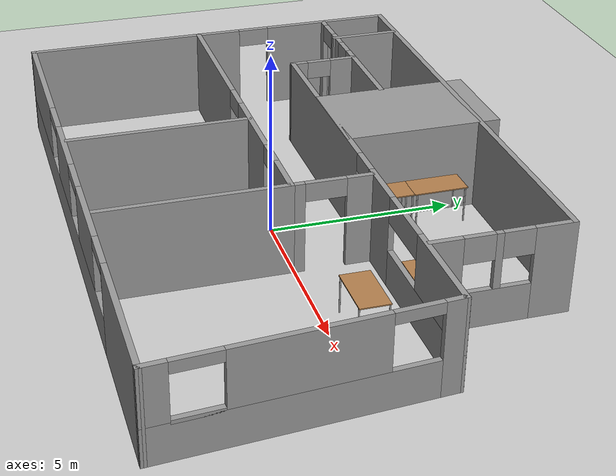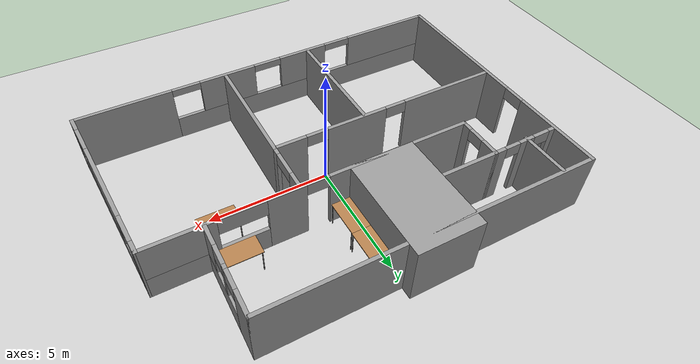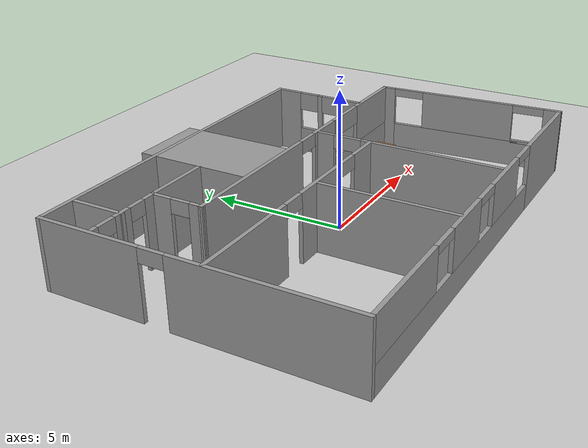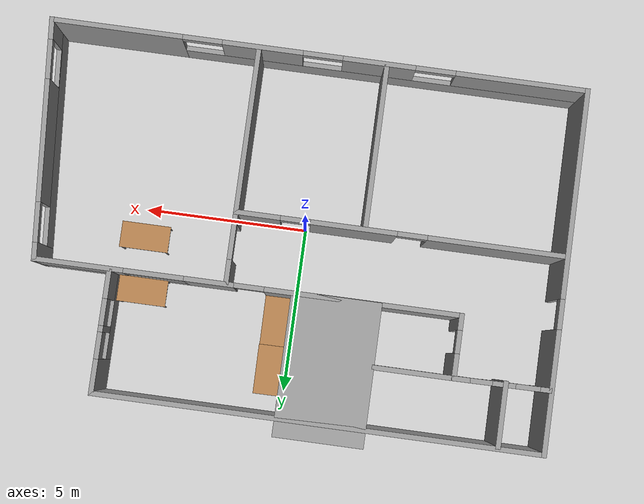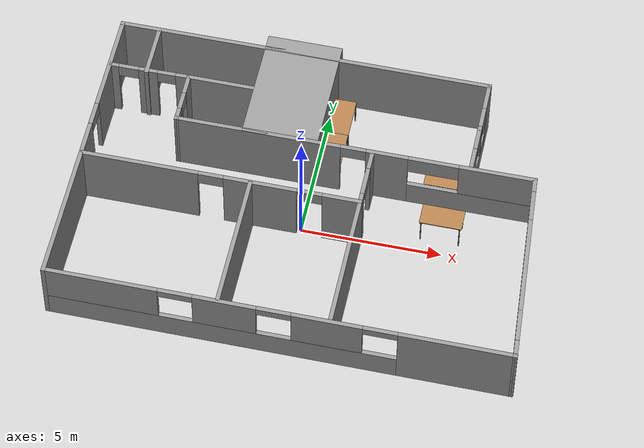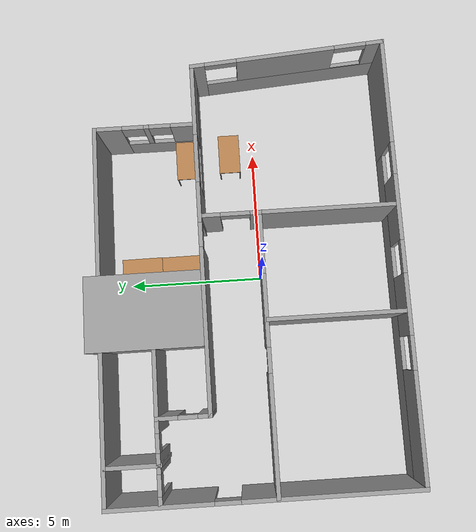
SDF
<sdf version="1.6">
 <world name="default">
  <model name="ground_plane">
   <static>1</static>
   <link name="link">
    <collision name="collision">
     <geometry><plane><normal>0 0 1</normal><size>100 100</size></plane></geometry>
     <surface>
      <contact><collide_bitmask>65535</collide_bitmask></contact>
      <friction><ode><mu>100</mu><mu2>50</mu2></ode></friction>
     </surface>
    </collision>
    <visual name="visual">
     <cast_shadows>0</cast_shadows>
     <geometry><plane><normal>0 0 1</normal><size>100 100</size></plane></geometry>
     <material>
      <script><uri>file://media/materials/scripts/gazebo.material</uri><name>Gazebo/Grey</name></script>
     </material>
    </visual>
   </link>
  </model>
  <model name="Building">
   <pose>0.27526 0.57552 0 0 -0 0</pose>
   <link name="Wall_100">
    <collision name="Wall_100_Collision">
     <geometry><box><size>4.3 2.7 2.5</size></box></geometry>
     <pose>0 0 1.25 0 -0 0</pose>
    </collision>
    <visual name="Wall_100_Visual">
     <pose>0 0 1.25 0 -0 0</pose>
     <geometry><box><size>4.3 2.7 2.5</size></box></geometry>
     <material>
      <script><uri>file://media/materials/scripts/gazebo.material</uri><name>Gazebo/Grey</name></script>
      <ambient>1 1 1 1</ambient>
     </material>
     <meta><layer>0</layer></meta>
    </visual>
    <pose>-1.48764 3.58577 0 0 0 -1.5708</pose>
   </link>
   <link name="Wall_40">
    <pose>-8.07936 -0.23025 0 0 0 -1.5708</pose>
    <visual name="Wall_40_Visual_0">
     <pose>-3.61824 0 1.25 0 -0 0</pose>
     <geometry><box><size>3.76351 0.15 2.5</size></box></geometry>
     <material>
      <script><uri>file://media/materials/scripts/gazebo.material</uri><name>Gazebo/Grey</name></script>
      <ambient>1 1 1 1</ambient>
     </material>
     <meta><layer>0</layer></meta>
    </visual>
    <collision name="Wall_40_Collision_0">
     <geometry><box><size>3.76351 0.15 2.5</size></box></geometry>
     <pose>-3.61824 0 1.25 0 -0 0</pose>
    </collision>
    <visual name="Wall_40_Visual_1">
     <pose>2.33175 0 1.25 0 -0 0</pose>
     <geometry><box><size>6.33649 0.15 2.5</size></box></geometry>
     <material>
      <script><uri>file://media/materials/scripts/gazebo.material</uri><name>Gazebo/Grey</name></script>
      <ambient>1 1 1 1</ambient>
     </material>
     <meta><layer>0</layer></meta>
    </visual>
    <collision name="Wall_40_Collision_1">
     <geometry><box><size>6.33649 0.15 2.5</size></box></geometry>
     <pose>2.33175 0 1.25 0 -0 0</pose>
    </collision>
    <visual name="Wall_40_Visual_2">
     <pose>-1.28649 0 2.25 0 -0 0</pose>
     <geometry><box><size>0.9 0.15 0.5</size></box></geometry>
     <material>
      <script><uri>file://media/materials/scripts/gazebo.material</uri><name>Gazebo/Grey</name></script>
      <ambient>1 1 1 1</ambient>
     </material>
     <meta><layer>0</layer></meta>
    </visual>
    <collision name="Wall_40_Collision_2">
     <geometry><box><size>0.9 0.15 0.5</size></box></geometry>
     <pose>-1.28649 0 2.25 0 -0 0</pose>
    </collision>
   </link>
   <link name="Wall_47">
    <collision name="Wall_47_Collision">
     <geometry><box><size>13.5 0.15 2.5</size></box></geometry>
     <pose>0 0 1.25 0 -0 0</pose>
    </collision>
    <visual name="Wall_47_Visual">
     <pose>0 0 1.25 0 -0 0</pose>
     <geometry><box><size>13.5 0.15 2.5</size></box></geometry>
     <material>
      <script><uri>file://media/materials/scripts/gazebo.material</uri><name>Gazebo/Grey</name></script>
      <ambient>1 1 1 1</ambient>
     </material>
     <meta><layer>0</layer></meta>
    </visual>
    <pose>-1.40436 5.19475 0 0 -0 0</pose>
   </link>
   <link name="Wall_49">
    <pose>5.27064 3.39475 0 0 0 -1.5708</pose>
    <visual name="Wall_49_Visual_0">
     <pose>-1.33629 0 1.25 0 -0 0</pose>
     <geometry><box><size>1.07742 0.15 2.5</size></box></geometry>
     <material>
      <script><uri>file://media/materials/scripts/gazebo.material</uri><name>Gazebo/Grey</name></script>
      <ambient>1 1 1 1</ambient>
     </material>
     <meta><layer>0</layer></meta>
    </visual>
    <collision name="Wall_49_Collision_0">
     <geometry><box><size>1.07742 0.15 2.5</size></box></geometry>
     <pose>-1.33629 0 1.25 0 -0 0</pose>
    </collision>
    <visual name="Wall_49_Visual_1">
     <pose>0.538709 0 0.5 0 -0 0</pose>
     <geometry><box><size>2.67258 0.15 1</size></box></geometry>
     <material>
      <script><uri>file://media/materials/scripts/gazebo.material</uri><name>Gazebo/Grey</name></script>
      <ambient>1 1 1 1</ambient>
     </material>
     <meta><layer>0</layer></meta>
    </visual>
    <collision name="Wall_49_Collision_1">
     <geometry><box><size>2.67258 0.15 1</size></box></geometry>
     <pose>0.538709 0 0.5 0 -0 0</pose>
    </collision>
    <visual name="Wall_49_Visual_2">
     <pose>0.097651 0 1.75 0 -0 0</pose>
     <geometry><box><size>0.190465 0.15 1.5</size></box></geometry>
     <material>
      <script><uri>file://media/materials/scripts/gazebo.material</uri><name>Gazebo/Grey</name></script>
      <ambient>1 1 1 1</ambient>
     </material>
     <meta><layer>0</layer></meta>
    </visual>
    <collision name="Wall_49_Collision_2">
     <geometry><box><size>0.190465 0.15 1.5</size></box></geometry>
     <pose>0.097651 0 1.75 0 -0 0</pose>
    </collision>
    <visual name="Wall_49_Visual_3">
     <pose>1.43394 0 1.75 0 -0 0</pose>
     <geometry><box><size>0.882117 0.15 1.5</size></box></geometry>
     <material>
      <script><uri>file://media/materials/scripts/gazebo.material</uri><name>Gazebo/Grey</name></script>
      <ambient>1 1 1 1</ambient>
     </material>
     <meta><layer>0</layer></meta>
    </visual>
    <collision name="Wall_49_Collision_3">
     <geometry><box><size>0.882117 0.15 1.5</size></box></geometry>
     <pose>1.43394 0 1.75 0 -0 0</pose>
    </collision>
    <visual name="Wall_49_Visual_4">
     <pose>-0.397582 0 2.15 0 -0 0</pose>
     <geometry><box><size>0.8 0.15 0.7</size></box></geometry>
     <material>
      <script><uri>file://media/materials/scripts/gazebo.material</uri><name>Gazebo/Grey</name></script>
      <ambient>1 1 1 1</ambient>
     </material>
     <meta><layer>0</layer></meta>
    </visual>
    <collision name="Wall_49_Collision_4">
     <geometry><box><size>0.8 0.15 0.7</size></box></geometry>
     <pose>-0.397582 0 2.15 0 -0 0</pose>
    </collision>
    <visual name="Wall_49_Visual_5">
     <pose>0.592883 0 2.15 0 -0 0</pose>
     <geometry><box><size>0.8 0.15 0.7</size></box></geometry>
     <material>
      <script><uri>file://media/materials/scripts/gazebo.material</uri><name>Gazebo/Grey</name></script>
      <ambient>1 1 1 1</ambient>
     </material>
     <meta><layer>0</layer></meta>
    </visual>
    <collision name="Wall_49_Collision_5">
     <geometry><box><size>0.8 0.15 0.7</size></box></geometry>
     <pose>0.592883 0 2.15 0 -0 0</pose>
    </collision>
   </link>
   <link name="Wall_54">
    <pose>-0.002761 -5.65525 0 0 -0 3.14159</pose>
    <visual name="Wall_54_Visual_0">
     <pose>-6.13829 0 1.25 0 -0 0</pose>
     <geometry><box><size>4.02662 0.15 2.5</size></box></geometry>
     <material>
      <script><uri>file://media/materials/scripts/gazebo.material</uri><name>Gazebo/Grey</name></script>
      <ambient>1 1 1 1</ambient>
     </material>
     <meta><layer>0</layer></meta>
    </visual>
    <collision name="Wall_54_Collision_0">
     <geometry><box><size>4.02662 0.15 2.5</size></box></geometry>
     <pose>-6.13829 0 1.25 0 -0 0</pose>
    </collision>
    <visual name="Wall_54_Visual_1">
     <pose>2.01331 0 0.5 0 -0 0</pose>
     <geometry><box><size>12.2766 0.15 1</size></box></geometry>
     <material>
      <script><uri>file://media/materials/scripts/gazebo.material</uri><name>Gazebo/Grey</name></script>
      <ambient>1 1 1 1</ambient>
     </material>
     <meta><layer>0</layer></meta>
    </visual>
    <collision name="Wall_54_Collision_1">
     <geometry><box><size>12.2766 0.15 1</size></box></geometry>
     <pose>2.01331 0 0.5 0 -0 0</pose>
    </collision>
    <visual name="Wall_54_Visual_2">
     <pose>-1.70444 0 1.75 0 -0 0</pose>
     <geometry><box><size>2.44108 0.15 1.5</size></box></geometry>
     <material>
      <script><uri>file://media/materials/scripts/gazebo.material</uri><name>Gazebo/Grey</name></script>
      <ambient>1 1 1 1</ambient>
     </material>
     <meta><layer>0</layer></meta>
    </visual>
    <collision name="Wall_54_Collision_2">
     <geometry><box><size>2.44108 0.15 1.5</size></box></geometry>
     <pose>-1.70444 0 1.75 0 -0 0</pose>
    </collision>
    <visual name="Wall_54_Visual_3">
     <pose>1.81519 0 1.75 0 -0 0</pose>
     <geometry><box><size>2.19819 0.15 1.5</size></box></geometry>
     <material>
      <script><uri>file://media/materials/scripts/gazebo.material</uri><name>Gazebo/Grey</name></script>
      <ambient>1 1 1 1</ambient>
     </material>
     <meta><layer>0</layer></meta>
    </visual>
    <collision name="Wall_54_Collision_3">
     <geometry><box><size>2.19819 0.15 1.5</size></box></geometry>
     <pose>1.81519 0 1.75 0 -0 0</pose>
    </collision>
    <visual name="Wall_54_Visual_4">
     <pose>6.13294 0 1.75 0 -0 0</pose>
     <geometry><box><size>4.03732 0.15 1.5</size></box></geometry>
     <material>
      <script><uri>file://media/materials/scripts/gazebo.material</uri><name>Gazebo/Grey</name></script>
      <ambient>1 1 1 1</ambient>
     </material>
     <meta><layer>0</layer></meta>
    </visual>
    <collision name="Wall_54_Collision_4">
     <geometry><box><size>4.03732 0.15 1.5</size></box></geometry>
     <pose>6.13294 0 1.75 0 -0 0</pose>
    </collision>
    <visual name="Wall_54_Visual_5">
     <pose>-3.52498 0 2.35 0 -0 0</pose>
     <geometry><box><size>1.2 0.15 0.3</size></box></geometry>
     <material>
      <script><uri>file://media/materials/scripts/gazebo.material</uri><name>Gazebo/Grey</name></script>
      <ambient>1 1 1 1</ambient>
     </material>
     <meta><layer>0</layer></meta>
    </visual>
    <collision name="Wall_54_Collision_5">
     <geometry><box><size>1.2 0.15 0.3</size></box></geometry>
     <pose>-3.52498 0 2.35 0 -0 0</pose>
    </collision>
    <visual name="Wall_54_Visual_6">
     <pose>0.116097 0 2.35 0 -0 0</pose>
     <geometry><box><size>1.2 0.15 0.3</size></box></geometry>
     <material>
      <script><uri>file://media/materials/scripts/gazebo.material</uri><name>Gazebo/Grey</name></script>
      <ambient>1 1 1 1</ambient>
     </material>
     <meta><layer>0</layer></meta>
    </visual>
    <collision name="Wall_54_Collision_6">
     <geometry><box><size>1.2 0.15 0.3</size></box></geometry>
     <pose>0.116097 0 2.35 0 -0 0</pose>
    </collision>
    <visual name="Wall_54_Visual_7">
     <pose>3.51428 0 2.35 0 -0 0</pose>
     <geometry><box><size>1.2 0.15 0.3</size></box></geometry>
     <material>
      <script><uri>file://media/materials/scripts/gazebo.material</uri><name>Gazebo/Grey</name></script>
      <ambient>1 1 1 1</ambient>
     </material>
     <meta><layer>0</layer></meta>
    </visual>
    <collision name="Wall_54_Collision_7">
     <geometry><box><size>1.2 0.15 0.3</size></box></geometry>
     <pose>3.51428 0 2.35 0 -0 0</pose>
    </collision>
   </link>
   <link name="Wall_62">
    <pose>-6.60165 3.32498 0 0 0 -3.13189</pose>
    <visual name="Wall_62_Visual_0">
     <pose>-1.20265 0 1.25 0 -0 0</pose>
     <geometry><box><size>0.553995 0.15 2.5</size></box></geometry>
     <material>
      <script><uri>file://media/materials/scripts/gazebo.material</uri><name>Gazebo/Grey</name></script>
      <ambient>1 1 1 1</ambient>
     </material>
     <meta><layer>0</layer></meta>
    </visual>
    <collision name="Wall_62_Collision_0">
     <geometry><box><size>0.553995 0.15 2.5</size></box></geometry>
     <pose>-1.20265 0 1.25 0 -0 0</pose>
    </collision>
    <visual name="Wall_62_Visual_1">
     <pose>0.073898 0 1.25 0 -0 0</pose>
     <geometry><box><size>0.684821 0.15 2.5</size></box></geometry>
     <material>
      <script><uri>file://media/materials/scripts/gazebo.material</uri><name>Gazebo/Grey</name></script>
      <ambient>1 1 1 1</ambient>
     </material>
     <meta><layer>0</layer></meta>
    </visual>
    <collision name="Wall_62_Collision_1">
     <geometry><box><size>0.684821 0.15 2.5</size></box></geometry>
     <pose>0.073898 0 1.25 0 -0 0</pose>
    </collision>
    <visual name="Wall_62_Visual_2">
     <pose>1.31124 0 1.25 0 -0 0</pose>
     <geometry><box><size>0.336811 0.15 2.5</size></box></geometry>
     <material>
      <script><uri>file://media/materials/scripts/gazebo.material</uri><name>Gazebo/Grey</name></script>
      <ambient>1 1 1 1</ambient>
     </material>
     <meta><layer>0</layer></meta>
    </visual>
    <collision name="Wall_62_Collision_2">
     <geometry><box><size>0.336811 0.15 2.5</size></box></geometry>
     <pose>1.31124 0 1.25 0 -0 0</pose>
    </collision>
    <visual name="Wall_62_Visual_3">
     <pose>-0.597083 0 2.25 0 -0 0</pose>
     <geometry><box><size>0.65714 0.15 0.5</size></box></geometry>
     <material>
      <script><uri>file://media/materials/scripts/gazebo.material</uri><name>Gazebo/Grey</name></script>
      <ambient>1 1 1 1</ambient>
     </material>
     <meta><layer>0</layer></meta>
    </visual>
    <collision name="Wall_62_Collision_3">
     <geometry><box><size>0.65714 0.15 0.5</size></box></geometry>
     <pose>-0.597083 0 2.25 0 -0 0</pose>
    </collision>
    <visual name="Wall_62_Visual_4">
     <pose>0.779572 0 2.25 0 -0 0</pose>
     <geometry><box><size>0.726529 0.15 0.5</size></box></geometry>
     <material>
      <script><uri>file://media/materials/scripts/gazebo.material</uri><name>Gazebo/Grey</name></script>
      <ambient>1 1 1 1</ambient>
     </material>
     <meta><layer>0</layer></meta>
    </visual>
    <collision name="Wall_62_Collision_4">
     <geometry><box><size>0.726529 0.15 0.5</size></box></geometry>
     <pose>0.779572 0 2.25 0 -0 0</pose>
    </collision>
   </link>
   <link name="Wall_65">
    <pose>-5.19707 2.41361 0 0 0 -1.5708</pose>
    <visual name="Wall_65_Visual_0">
     <pose>-0.598058 0 1.25 0 -0 0</pose>
     <geometry><box><size>0.803885 0.15 2.5</size></box></geometry>
     <material>
      <script><uri>file://media/materials/scripts/gazebo.material</uri><name>Gazebo/Grey</name></script>
      <ambient>1 1 1 1</ambient>
     </material>
     <meta><layer>0</layer></meta>
    </visual>
    <collision name="Wall_65_Collision_0">
     <geometry><box><size>0.803885 0.15 2.5</size></box></geometry>
     <pose>-0.598058 0 1.25 0 -0 0</pose>
    </collision>
    <visual name="Wall_65_Visual_1">
     <pose>0.747855 0 1.25 0 -0 0</pose>
     <geometry><box><size>0.504291 0.15 2.5</size></box></geometry>
     <material>
      <script><uri>file://media/materials/scripts/gazebo.material</uri><name>Gazebo/Grey</name></script>
      <ambient>1 1 1 1</ambient>
     </material>
     <meta><layer>0</layer></meta>
    </visual>
    <collision name="Wall_65_Collision_1">
     <geometry><box><size>0.504291 0.15 2.5</size></box></geometry>
     <pose>0.747855 0 1.25 0 -0 0</pose>
    </collision>
    <visual name="Wall_65_Visual_2">
     <pose>0.149797 0 2.25 0 -0 0</pose>
     <geometry><box><size>0.691825 0.15 0.5</size></box></geometry>
     <material>
      <script><uri>file://media/materials/scripts/gazebo.material</uri><name>Gazebo/Grey</name></script>
      <ambient>1 1 1 1</ambient>
     </material>
     <meta><layer>0</layer></meta>
    </visual>
    <collision name="Wall_65_Collision_2">
     <geometry><box><size>0.691825 0.15 0.5</size></box></geometry>
     <pose>0.149797 0 2.25 0 -0 0</pose>
    </collision>
   </link>
   <link name="Wall_70">
    <pose>7.7983 -2.06765 0 0 0 -1.49414</pose>
    <visual name="Wall_70_Visual_0">
     <pose>-3.39164 0 1.25 0 -0 0</pose>
     <geometry><box><size>0.563048 0.15 2.5</size></box></geometry>
     <material>
      <script><uri>file://media/materials/scripts/gazebo.material</uri><name>Gazebo/Grey</name></script>
      <ambient>1 1 1 1</ambient>
     </material>
     <meta><layer>0</layer></meta>
    </visual>
    <collision name="Wall_70_Collision_0">
     <geometry><box><size>0.563048 0.15 2.5</size></box></geometry>
     <pose>-3.39164 0 1.25 0 -0 0</pose>
    </collision>
    <visual name="Wall_70_Visual_1">
     <pose>0.281524 0 0.5 0 -0 0</pose>
     <geometry><box><size>6.78329 0.15 1</size></box></geometry>
     <material>
      <script><uri>file://media/materials/scripts/gazebo.material</uri><name>Gazebo/Grey</name></script>
      <ambient>1 1 1 1</ambient>
     </material>
     <meta><layer>0</layer></meta>
    </visual>
    <collision name="Wall_70_Collision_1">
     <geometry><box><size>6.78329 0.15 1</size></box></geometry>
     <pose>0.281524 0 0.5 0 -0 0</pose>
    </collision>
    <visual name="Wall_70_Visual_2">
     <pose>-0.058851 0 1.75 0 -0 0</pose>
     <geometry><box><size>3.70254 0.15 1.5</size></box></geometry>
     <material>
      <script><uri>file://media/materials/scripts/gazebo.material</uri><name>Gazebo/Grey</name></script>
      <ambient>1 1 1 1</ambient>
     </material>
     <meta><layer>0</layer></meta>
    </visual>
    <collision name="Wall_70_Collision_2">
     <geometry><box><size>3.70254 0.15 1.5</size></box></geometry>
     <pose>-0.058851 0 1.75 0 -0 0</pose>
    </collision>
    <visual name="Wall_70_Visual_3">
     <pose>3.33279 0 1.75 0 -0 0</pose>
     <geometry><box><size>0.68075 0.15 1.5</size></box></geometry>
     <material>
      <script><uri>file://media/materials/scripts/gazebo.material</uri><name>Gazebo/Grey</name></script>
      <ambient>1 1 1 1</ambient>
     </material>
     <meta><layer>0</layer></meta>
    </visual>
    <collision name="Wall_70_Collision_3">
     <geometry><box><size>0.68075 0.15 1.5</size></box></geometry>
     <pose>3.33279 0 1.75 0 -0 0</pose>
    </collision>
    <visual name="Wall_70_Visual_4">
     <pose>2.39242 0 1 0 -0 0</pose>
     <geometry><box><size>1.2 0.15 0.1</size></box></geometry>
     <material>
      <script><uri>file://media/materials/scripts/gazebo.material</uri><name>Gazebo/Grey</name></script>
      <ambient>1 1 1 1</ambient>
     </material>
     <meta><layer>0</layer></meta>
    </visual>
    <collision name="Wall_70_Collision_4">
     <geometry><box><size>1.2 0.15 0.1</size></box></geometry>
     <pose>2.39242 0 1 0 -0 0</pose>
    </collision>
    <visual name="Wall_70_Visual_5">
     <pose>-2.51012 0 2.35 0 -0 0</pose>
     <geometry><box><size>1.2 0.15 0.3</size></box></geometry>
     <material>
      <script><uri>file://media/materials/scripts/gazebo.material</uri><name>Gazebo/Grey</name></script>
      <ambient>1 1 1 1</ambient>
     </material>
     <meta><layer>0</layer></meta>
    </visual>
    <collision name="Wall_70_Collision_5">
     <geometry><box><size>1.2 0.15 0.3</size></box></geometry>
     <pose>-2.51012 0 2.35 0 -0 0</pose>
    </collision>
    <visual name="Wall_70_Visual_6">
     <pose>2.39242 0 2.35 0 -0 0</pose>
     <geometry><box><size>1.2 0.15 0.3</size></box></geometry>
     <material>
      <script><uri>file://media/materials/scripts/gazebo.material</uri><name>Gazebo/Grey</name></script>
      <ambient>1 1 1 1</ambient>
     </material>
     <meta><layer>0</layer></meta>
    </visual>
    <collision name="Wall_70_Collision_6">
     <geometry><box><size>1.2 0.15 0.3</size></box></geometry>
     <pose>2.39242 0 2.35 0 -0 0</pose>
    </collision>
   </link>
   <link name="Wall_74">
    <pose>-3.11721 -0.654815 0 0 -0 0</pose>
    <visual name="Wall_74_Visual_0">
     <pose>-2.8962 0 1.25 0 -0 0</pose>
     <geometry><box><size>4.2076 0.15 2.5</size></box></geometry>
     <material>
      <script><uri>file://media/materials/scripts/gazebo.material</uri><name>Gazebo/Grey</name></script>
      <ambient>1 1 1 1</ambient>
     </material>
     <meta><layer>0</layer></meta>
    </visual>
    <collision name="Wall_74_Collision_0">
     <geometry><box><size>4.2076 0.15 2.5</size></box></geometry>
     <pose>-2.8962 0 1.25 0 -0 0</pose>
    </collision>
    <visual name="Wall_74_Visual_1">
     <pose>1.40494 0 1.25 0 -0 0</pose>
     <geometry><box><size>2.59468 0.15 2.5</size></box></geometry>
     <material>
      <script><uri>file://media/materials/scripts/gazebo.material</uri><name>Gazebo/Grey</name></script>
      <ambient>1 1 1 1</ambient>
     </material>
     <meta><layer>0</layer></meta>
    </visual>
    <collision name="Wall_74_Collision_1">
     <geometry><box><size>2.59468 0.15 2.5</size></box></geometry>
     <pose>1.40494 0 1.25 0 -0 0</pose>
    </collision>
    <visual name="Wall_74_Visual_2">
     <pose>4.30114 0 1.25 0 -0 0</pose>
     <geometry><box><size>1.39772 0.15 2.5</size></box></geometry>
     <material>
      <script><uri>file://media/materials/scripts/gazebo.material</uri><name>Gazebo/Grey</name></script>
      <ambient>1 1 1 1</ambient>
     </material>
     <meta><layer>0</layer></meta>
    </visual>
    <collision name="Wall_74_Collision_2">
     <geometry><box><size>1.39772 0.15 2.5</size></box></geometry>
     <pose>4.30114 0 1.25 0 -0 0</pose>
    </collision>
    <visual name="Wall_74_Visual_3">
     <pose>-0.342396 0 2.25 0 -0 0</pose>
     <geometry><box><size>0.9 0.15 0.5</size></box></geometry>
     <material>
      <script><uri>file://media/materials/scripts/gazebo.material</uri><name>Gazebo/Grey</name></script>
      <ambient>1 1 1 1</ambient>
     </material>
     <meta><layer>0</layer></meta>
    </visual>
    <collision name="Wall_74_Collision_3">
     <geometry><box><size>0.9 0.15 0.5</size></box></geometry>
     <pose>-0.342396 0 2.25 0 -0 0</pose>
    </collision>
    <visual name="Wall_74_Visual_4">
     <pose>3.15228 0 2.25 0 -0 0</pose>
     <geometry><box><size>0.9 0.15 0.5</size></box></geometry>
     <material>
      <script><uri>file://media/materials/scripts/gazebo.material</uri><name>Gazebo/Grey</name></script>
      <ambient>1 1 1 1</ambient>
     </material>
     <meta><layer>0</layer></meta>
    </visual>
    <collision name="Wall_74_Collision_4">
     <geometry><box><size>0.9 0.15 0.5</size></box></geometry>
     <pose>3.15228 0 2.25 0 -0 0</pose>
    </collision>
   </link>
   <link name="Wall_75">
    <collision name="Wall_75_Collision">
     <geometry><box><size>5 0.15 2.5</size></box></geometry>
     <pose>0 0 1.25 0 -0 0</pose>
    </collision>
    <visual name="Wall_75_Visual">
     <pose>0 0 1.25 0 -0 0</pose>
     <geometry><box><size>5 0.15 2.5</size></box></geometry>
     <material>
      <script><uri>file://media/materials/scripts/gazebo.material</uri><name>Gazebo/Grey</name></script>
      <ambient>1 1 1 1</ambient>
     </material>
     <meta><layer>0</layer></meta>
    </visual>
    <pose>1.80779 -3.07981 0 0 0 -1.5708</pose>
   </link>
   <link name="Wall_79">
    <collision name="Wall_79_Collision">
     <geometry><box><size>5 0.15 2.5</size></box></geometry>
     <pose>0 0 1.25 0 -0 0</pose>
    </collision>
    <visual name="Wall_79_Visual">
     <pose>0 0 1.25 0 -0 0</pose>
     <geometry><box><size>5 0.15 2.5</size></box></geometry>
     <material>
      <script><uri>file://media/materials/scripts/gazebo.material</uri><name>Gazebo/Grey</name></script>
      <ambient>1 1 1 1</ambient>
     </material>
     <meta><layer>0</layer></meta>
    </visual>
    <pose>-2.05138 -3.12608 0 0 0 -1.5708</pose>
   </link>
   <link name="Wall_83">
    <collision name="Wall_83_Collision">
     <geometry><box><size>2 0.15 2.5</size></box></geometry>
     <pose>0 0 1.25 0 -0 0</pose>
    </collision>
    <visual name="Wall_83_Visual">
     <pose>0 0 1.25 0 -0 0</pose>
     <geometry><box><size>2 0.15 2.5</size></box></geometry>
     <material>
      <script><uri>file://media/materials/scripts/gazebo.material</uri><name>Gazebo/Grey</name></script>
      <ambient>1 1 1 1</ambient>
     </material>
     <meta><layer>0</layer></meta>
    </visual>
    <pose>-6.72313 4.20134 0 0 0 -1.5708</pose>
   </link>
   <link name="Wall_85">
    <collision name="Wall_85_Collision">
     <geometry><box><size>2.5 0.15 2.5</size></box></geometry>
     <pose>0 0 1.25 0 -0 0</pose>
    </collision>
    <visual name="Wall_85_Visual">
     <pose>0 0 1.25 0 -0 0</pose>
     <geometry><box><size>2.5 0.15 2.5</size></box></geometry>
     <material>
      <script><uri>file://media/materials/scripts/gazebo.material</uri><name>Gazebo/Grey</name></script>
      <ambient>1 1 1 1</ambient>
     </material>
     <meta><layer>0</layer></meta>
    </visual>
    <pose>-4.02207 3.33861 0 0 -0 0</pose>
   </link>
   <link name="Wall_89">
    <pose>1.80779 0.395185 0 0 -0 1.5708</pose>
    <visual name="Wall_89_Visual_0">
     <pose>-0.9132 0 1.25 0 -0 0</pose>
     <geometry><box><size>0.423601 0.15 2.5</size></box></geometry>
     <material>
      <script><uri>file://media/materials/scripts/gazebo.material</uri><name>Gazebo/Grey</name></script>
      <ambient>1 1 1 1</ambient>
     </material>
     <meta><layer>0</layer></meta>
    </visual>
    <collision name="Wall_89_Collision_0">
     <geometry><box><size>0.423601 0.15 2.5</size></box></geometry>
     <pose>-0.9132 0 1.25 0 -0 0</pose>
    </collision>
    <visual name="Wall_89_Visual_1">
     <pose>0.749251 0 1.25 0 -0 0</pose>
     <geometry><box><size>0.751499 0.15 2.5</size></box></geometry>
     <material>
      <script><uri>file://media/materials/scripts/gazebo.material</uri><name>Gazebo/Grey</name></script>
      <ambient>1 1 1 1</ambient>
     </material>
     <meta><layer>0</layer></meta>
    </visual>
    <collision name="Wall_89_Collision_1">
     <geometry><box><size>0.751499 0.15 2.5</size></box></geometry>
     <pose>0.749251 0 1.25 0 -0 0</pose>
    </collision>
    <visual name="Wall_89_Visual_2">
     <pose>-0.163949 0 2.25 0 -0 0</pose>
     <geometry><box><size>1.0749 0.15 0.5</size></box></geometry>
     <material>
      <script><uri>file://media/materials/scripts/gazebo.material</uri><name>Gazebo/Grey</name></script>
      <ambient>1 1 1 1</ambient>
     </material>
     <meta><layer>0</layer></meta>
    </visual>
    <collision name="Wall_89_Collision_2">
     <geometry><box><size>1.0749 0.15 0.5</size></box></geometry>
     <pose>-0.163949 0 2.25 0 -0 0</pose>
    </collision>
   </link>
   <link name="Wall_97">
    <pose>1.16285 1.50428 0 0 -0 0.002464</pose>
    <visual name="Wall_97_Visual_0">
     <pose>-3.46225 0 1.25 0 -0 0</pose>
     <geometry><box><size>5.94536 0.15 2.5</size></box></geometry>
     <material>
      <script><uri>file://media/materials/scripts/gazebo.material</uri><name>Gazebo/Grey</name></script>
      <ambient>1 1 1 1</ambient>
     </material>
     <meta><layer>0</layer></meta>
    </visual>
    <collision name="Wall_97_Collision_0">
     <geometry><box><size>5.94536 0.15 2.5</size></box></geometry>
     <pose>-3.46225 0 1.25 0 -0 0</pose>
    </collision>
    <visual name="Wall_97_Visual_1">
     <pose>1.15705 0 1.25 0 -0 0</pose>
     <geometry><box><size>1.49323 0.15 2.5</size></box></geometry>
     <material>
      <script><uri>file://media/materials/scripts/gazebo.material</uri><name>Gazebo/Grey</name></script>
      <ambient>1 1 1 1</ambient>
     </material>
     <meta><layer>0</layer></meta>
    </visual>
    <collision name="Wall_97_Collision_1">
     <geometry><box><size>1.49323 0.15 2.5</size></box></geometry>
     <pose>1.15705 0 1.25 0 -0 0</pose>
    </collision>
    <visual name="Wall_97_Visual_2">
     <pose>4.1693 0 0.5 0 -0 0</pose>
     <geometry><box><size>4.53127 0.15 1</size></box></geometry>
     <material>
      <script><uri>file://media/materials/scripts/gazebo.material</uri><name>Gazebo/Grey</name></script>
      <ambient>1 1 1 1</ambient>
     </material>
     <meta><layer>0</layer></meta>
    </visual>
    <collision name="Wall_97_Collision_2">
     <geometry><box><size>4.53127 0.15 1</size></box></geometry>
     <pose>4.1693 0 0.5 0 -0 0</pose>
    </collision>
    <visual name="Wall_97_Visual_3">
     <pose>5.0693 0 1.75 0 -0 0</pose>
     <geometry><box><size>2.73128 0.15 1.5</size></box></geometry>
     <material>
      <script><uri>file://media/materials/scripts/gazebo.material</uri><name>Gazebo/Grey</name></script>
      <ambient>1 1 1 1</ambient>
     </material>
     <meta><layer>0</layer></meta>
    </visual>
    <collision name="Wall_97_Collision_3">
     <geometry><box><size>2.73128 0.15 1.5</size></box></geometry>
     <pose>5.0693 0 1.75 0 -0 0</pose>
    </collision>
    <visual name="Wall_97_Visual_4">
     <pose>2.80366 0 2.15 0 -0 0</pose>
     <geometry><box><size>1.8 0.15 0.7</size></box></geometry>
     <material>
      <script><uri>file://media/materials/scripts/gazebo.material</uri><name>Gazebo/Grey</name></script>
      <ambient>1 1 1 1</ambient>
     </material>
     <meta><layer>0</layer></meta>
    </visual>
    <collision name="Wall_97_Collision_4">
     <geometry><box><size>1.8 0.15 0.7</size></box></geometry>
     <pose>2.80366 0 2.15 0 -0 0</pose>
    </collision>
    <visual name="Wall_97_Visual_5">
     <pose>-0.039569 0 2.25 0 -0 0</pose>
     <geometry><box><size>0.9 0.15 0.5</size></box></geometry>
     <material>
      <script><uri>file://media/materials/scripts/gazebo.material</uri><name>Gazebo/Grey</name></script>
      <ambient>1 1 1 1</ambient>
     </material>
     <meta><layer>0</layer></meta>
    </visual>
    <collision name="Wall_97_Collision_5">
     <geometry><box><size>0.9 0.15 0.5</size></box></geometry>
     <pose>-0.039569 0 2.25 0 -0 0</pose>
    </collision>
   </link>
   <static>1</static>
  </model>
  <model name="table">
   <static>1</static>
   <link name="link">
    <collision name="surface">
     <pose>0 0 1 0 -0 0</pose>
     <geometry><box><size>1.5 0.8 0.03</size></box></geometry>
     <surface><friction><ode><mu>0.6</mu><mu2>0.6</mu2></ode></friction></surface>
    </collision>
    <visual name="visual1">
     <pose>0 0 1 0 -0 0</pose>
     <geometry><box><size>1.5 0.8 0.03</size></box></geometry>
     <material>
      <script><uri>file://media/materials/scripts/gazebo.material</uri><name>Gazebo/Wood</name></script>
     </material>
    </visual>
    <collision name="front_left_leg">
     <pose>0.68 0.38 0.5 0 -0 0</pose>
     <geometry><cylinder><radius>0.02</radius><length>1</length></cylinder></geometry>
    </collision>
    <visual name="front_left_leg">
     <pose>0.68 0.38 0.5 0 -0 0</pose>
     <geometry><cylinder><radius>0.02</radius><length>1</length></cylinder></geometry>
     <material>
      <script><uri>file://media/materials/scripts/gazebo.material</uri><name>Gazebo/Grey</name></script>
     </material>
    </visual>
    <collision name="front_right_leg">
     <pose>0.68 -0.38 0.5 0 -0 0</pose>
     <geometry><cylinder><radius>0.02</radius><length>1</length></cylinder></geometry>
    </collision>
    <visual name="front_right_leg">
     <pose>0.68 -0.38 0.5 0 -0 0</pose>
     <geometry><cylinder><radius>0.02</radius><length>1</length></cylinder></geometry>
     <material>
      <script><uri>file://media/materials/scripts/gazebo.material</uri><name>Gazebo/Grey</name></script>
     </material>
    </visual>
    <collision name="back_right_leg">
     <pose>-0.68 -0.38 0.5 0 -0 0</pose>
     <geometry><cylinder><radius>0.02</radius><length>1</length></cylinder></geometry>
    </collision>
    <visual name="back_right_leg">
     <pose>-0.68 -0.38 0.5 0 -0 0</pose>
     <geometry><cylinder><radius>0.02</radius><length>1</length></cylinder></geometry>
     <material>
      <script><uri>file://media/materials/scripts/gazebo.material</uri><name>Gazebo/Grey</name></script>
     </material>
    </visual>
    <collision name="back_left_leg">
     <pose>-0.68 0.38 0.5 0 -0 0</pose>
     <geometry><cylinder><radius>0.02</radius><length>1</length></cylinder></geometry>
    </collision>
    <visual name="back_left_leg">
     <pose>-0.68 0.38 0.5 0 -0 0</pose>
     <geometry><cylinder><radius>0.02</radius><length>1</length></cylinder></geometry>
     <material>
      <script><uri>file://media/materials/scripts/gazebo.material</uri><name>Gazebo/Grey</name></script>
     </material>
    </visual>
   </link>
   <pose>4.82678 0.914784 0 0 -0 0</pose>
  </model>
  <model name="table_1">
   <static>1</static>
   <link name="link">
    <collision name="surface">
     <pose>0 0 1 0 -0 0</pose>
     <geometry><box><size>1.5 0.8 0.03</size></box></geometry>
     <surface><friction><ode><mu>0.6</mu><mu2>0.6</mu2></ode></friction></surface>
    </collision>
    <visual name="visual1">
     <pose>0 0 1 0 -0 0</pose>
     <geometry><box><size>1.5 0.8 0.03</size></box></geometry>
     <material>
      <script><uri>file://media/materials/scripts/gazebo.material</uri><name>Gazebo/Wood</name></script>
     </material>
    </visual>
    <collision name="front_left_leg">
     <pose>0.68 0.38 0.5 0 -0 0</pose>
     <geometry><cylinder><radius>0.02</radius><length>1</length></cylinder></geometry>
    </collision>
    <visual name="front_left_leg">
     <pose>0.68 0.38 0.5 0 -0 0</pose>
     <geometry><cylinder><radius>0.02</radius><length>1</length></cylinder></geometry>
     <material>
      <script><uri>file://media/materials/scripts/gazebo.material</uri><name>Gazebo/Grey</name></script>
     </material>
    </visual>
    <collision name="front_right_leg">
     <pose>0.68 -0.38 0.5 0 -0 0</pose>
     <geometry><cylinder><radius>0.02</radius><length>1</length></cylinder></geometry>
    </collision>
    <visual name="front_right_leg">
     <pose>0.68 -0.38 0.5 0 -0 0</pose>
     <geometry><cylinder><radius>0.02</radius><length>1</length></cylinder></geometry>
     <material>
      <script><uri>file://media/materials/scripts/gazebo.material</uri><name>Gazebo/Grey</name></script>
     </material>
    </visual>
    <collision name="back_right_leg">
     <pose>-0.68 -0.38 0.5 0 -0 0</pose>
     <geometry><cylinder><radius>0.02</radius><length>1</length></cylinder></geometry>
    </collision>
    <visual name="back_right_leg">
     <pose>-0.68 -0.38 0.5 0 -0 0</pose>
     <geometry><cylinder><radius>0.02</radius><length>1</length></cylinder></geometry>
     <material>
      <script><uri>file://media/materials/scripts/gazebo.material</uri><name>Gazebo/Grey</name></script>
     </material>
    </visual>
    <collision name="back_left_leg">
     <pose>-0.68 0.38 0.5 0 -0 0</pose>
     <geometry><cylinder><radius>0.02</radius><length>1</length></cylinder></geometry>
    </collision>
    <visual name="back_left_leg">
     <pose>-0.68 0.38 0.5 0 -0 0</pose>
     <geometry><cylinder><radius>0.02</radius><length>1</length></cylinder></geometry>
     <material>
      <script><uri>file://media/materials/scripts/gazebo.material</uri><name>Gazebo/Grey</name></script>
     </material>
    </visual>
   </link>
   <pose>4.67032 2.55949 0 0 -0 0</pose>
  </model>
  <model name="table_2">
   <static>1</static>
   <link name="link">
    <collision name="surface">
     <pose>0 0 1 0 -0 0</pose>
     <geometry><box><size>1.5 0.8 0.03</size></box></geometry>
     <surface><friction><ode><mu>0.6</mu><mu2>0.6</mu2></ode></friction></surface>
    </collision>
    <visual name="visual1">
     <pose>0 0 1 0 -0 0</pose>
     <geometry><box><size>1.5 0.8 0.03</size></box></geometry>
     <material>
      <script><uri>file://media/materials/scripts/gazebo.material</uri><name>Gazebo/Wood</name></script>
     </material>
    </visual>
    <collision name="front_left_leg">
     <pose>0.68 0.38 0.5 0 -0 0</pose>
     <geometry><cylinder><radius>0.02</radius><length>1</length></cylinder></geometry>
    </collision>
    <visual name="front_left_leg">
     <pose>0.68 0.38 0.5 0 -0 0</pose>
     <geometry><cylinder><radius>0.02</radius><length>1</length></cylinder></geometry>
     <material>
      <script><uri>file://media/materials/scripts/gazebo.material</uri><name>Gazebo/Grey</name></script>
     </material>
    </visual>
    <collision name="front_right_leg">
     <pose>0.68 -0.38 0.5 0 -0 0</pose>
     <geometry><cylinder><radius>0.02</radius><length>1</length></cylinder></geometry>
    </collision>
    <visual name="front_right_leg">
     <pose>0.68 -0.38 0.5 0 -0 0</pose>
     <geometry><cylinder><radius>0.02</radius><length>1</length></cylinder></geometry>
     <material>
      <script><uri>file://media/materials/scripts/gazebo.material</uri><name>Gazebo/Grey</name></script>
     </material>
    </visual>
    <collision name="back_right_leg">
     <pose>-0.68 -0.38 0.5 0 -0 0</pose>
     <geometry><cylinder><radius>0.02</radius><length>1</length></cylinder></geometry>
    </collision>
    <visual name="back_right_leg">
     <pose>-0.68 -0.38 0.5 0 -0 0</pose>
     <geometry><cylinder><radius>0.02</radius><length>1</length></cylinder></geometry>
     <material>
      <script><uri>file://media/materials/scripts/gazebo.material</uri><name>Gazebo/Grey</name></script>
     </material>
    </visual>
    <collision name="back_left_leg">
     <pose>-0.68 0.38 0.5 0 -0 0</pose>
     <geometry><cylinder><radius>0.02</radius><length>1</length></cylinder></geometry>
    </collision>
    <visual name="back_left_leg">
     <pose>-0.68 0.38 0.5 0 -0 0</pose>
     <geometry><cylinder><radius>0.02</radius><length>1</length></cylinder></geometry>
     <material>
      <script><uri>file://media/materials/scripts/gazebo.material</uri><name>Gazebo/Grey</name></script>
     </material>
    </visual>
   </link>
   <pose>0.509065 2.93824 0 0 0 -1.56281</pose>
  </model>
  <model name="table_2_clone">
   <static>1</static>
   <link name="link">
    <collision name="surface">
     <pose>0 0 1 0 -0 0</pose>
     <geometry><box><size>1.5 0.8 0.03</size></box></geometry>
     <surface><friction><ode><mu>0.6</mu><mu2>0.6</mu2></ode></friction></surface>
    </collision>
    <visual name="visual1">
     <pose>0 0 1 0 -0 0</pose>
     <geometry><box><size>1.5 0.8 0.03</size></box></geometry>
     <material>
      <script><uri>file://media/materials/scripts/gazebo.material</uri><name>Gazebo/Wood</name></script>
     </material>
    </visual>
    <collision name="front_left_leg">
     <pose>0.68 0.38 0.5 0 -0 0</pose>
     <geometry><cylinder><radius>0.02</radius><length>1</length></cylinder></geometry>
    </collision>
    <visual name="front_left_leg">
     <pose>0.68 0.38 0.5 0 -0 0</pose>
     <geometry><cylinder><radius>0.02</radius><length>1</length></cylinder></geometry>
     <material>
      <script><uri>file://media/materials/scripts/gazebo.material</uri><name>Gazebo/Grey</name></script>
     </material>
    </visual>
    <collision name="front_right_leg">
     <pose>0.68 -0.38 0.5 0 -0 0</pose>
     <geometry><cylinder><radius>0.02</radius><length>1</length></cylinder></geometry>
    </collision>
    <visual name="front_right_leg">
     <pose>0.68 -0.38 0.5 0 -0 0</pose>
     <geometry><cylinder><radius>0.02</radius><length>1</length></cylinder></geometry>
     <material>
      <script><uri>file://media/materials/scripts/gazebo.material</uri><name>Gazebo/Grey</name></script>
     </material>
    </visual>
    <collision name="back_right_leg">
     <pose>-0.68 -0.38 0.5 0 -0 0</pose>
     <geometry><cylinder><radius>0.02</radius><length>1</length></cylinder></geometry>
    </collision>
    <visual name="back_right_leg">
     <pose>-0.68 -0.38 0.5 0 -0 0</pose>
     <geometry><cylinder><radius>0.02</radius><length>1</length></cylinder></geometry>
     <material>
      <script><uri>file://media/materials/scripts/gazebo.material</uri><name>Gazebo/Grey</name></script>
     </material>
    </visual>
    <collision name="back_left_leg">
     <pose>-0.68 0.38 0.5 0 -0 0</pose>
     <geometry><cylinder><radius>0.02</radius><length>1</length></cylinder></geometry>
    </collision>
    <visual name="back_left_leg">
     <pose>-0.68 0.38 0.5 0 -0 0</pose>
     <geometry><cylinder><radius>0.02</radius><length>1</length></cylinder></geometry>
     <material>
      <script><uri>file://media/materials/scripts/gazebo.material</uri><name>Gazebo/Grey</name></script>
     </material>
    </visual>
   </link>
   <pose>0.511822 4.42523 0 0 0 -1.56281</pose>
  </model>
 </world>
</sdf>
